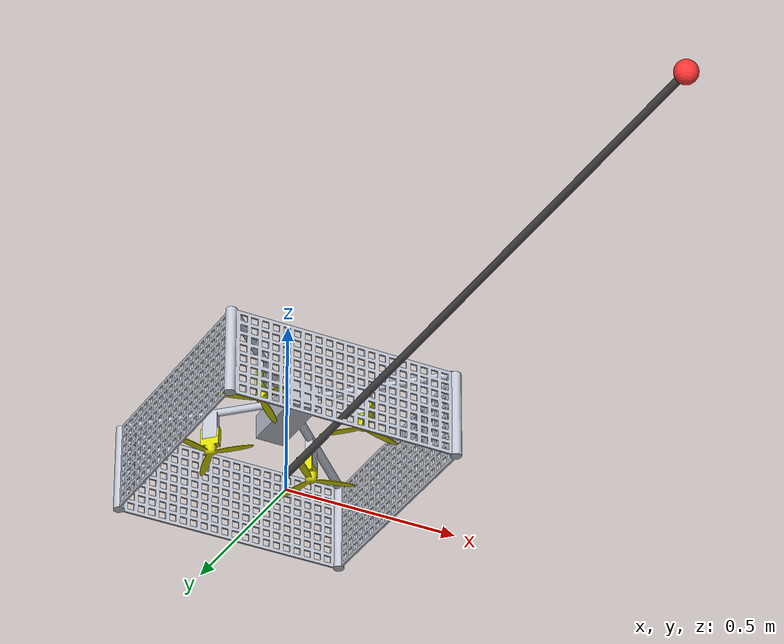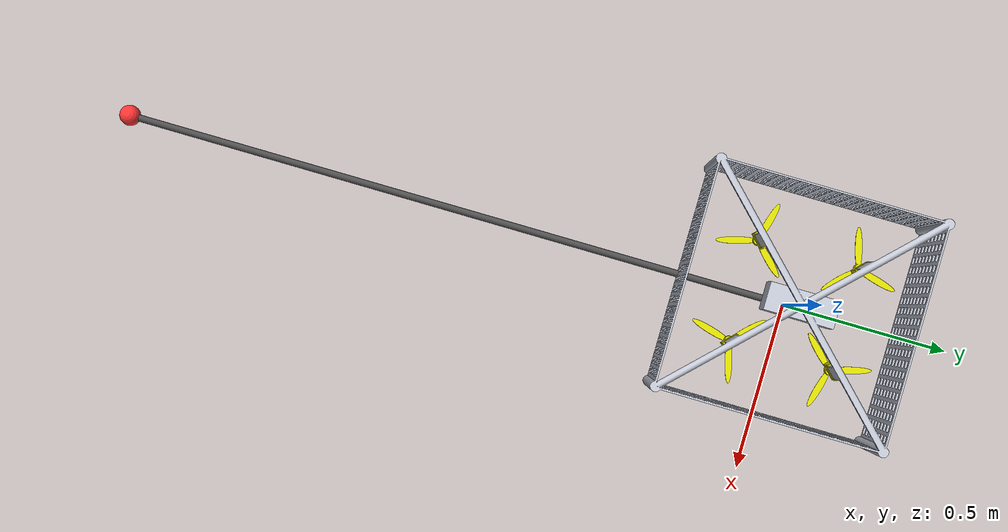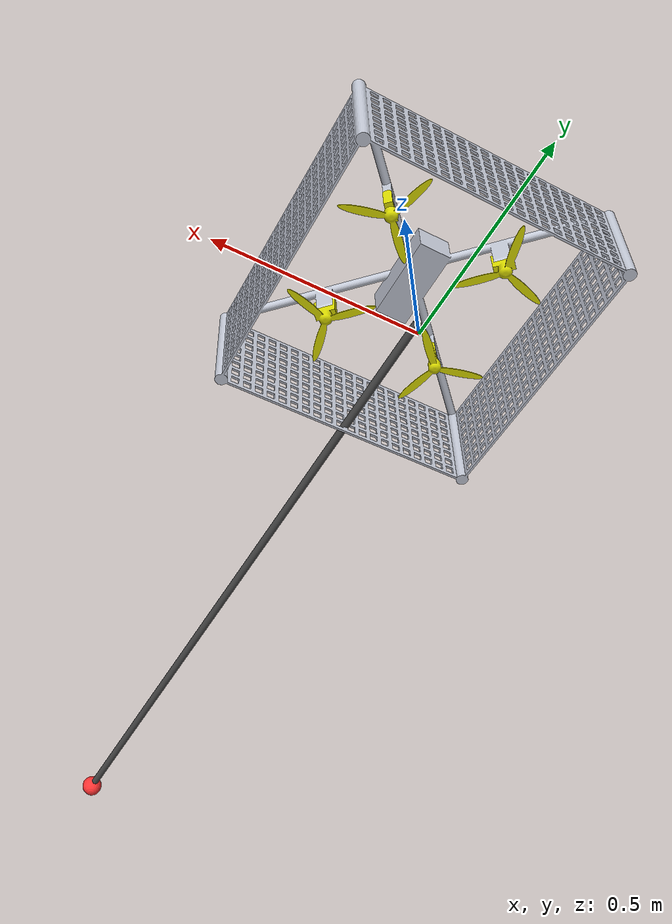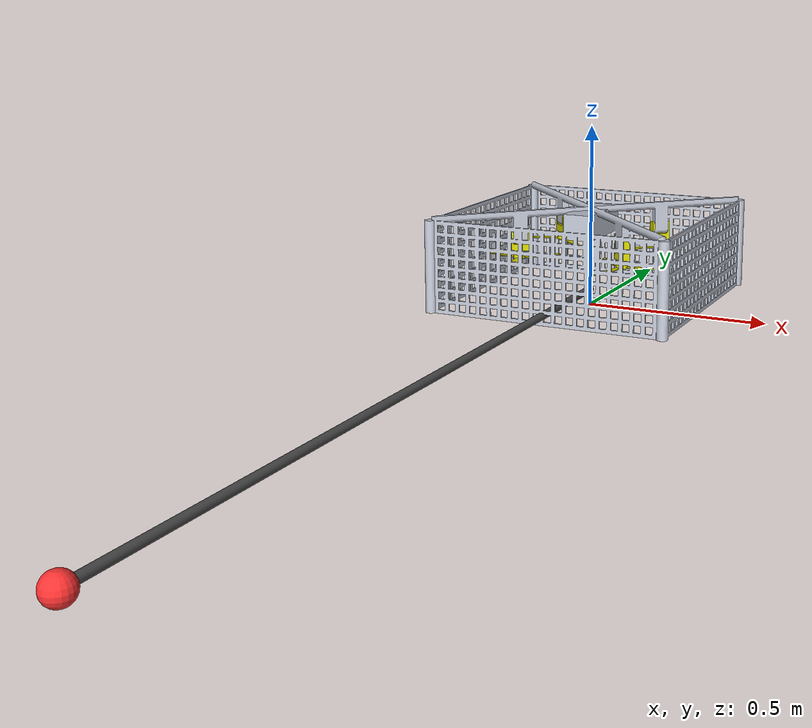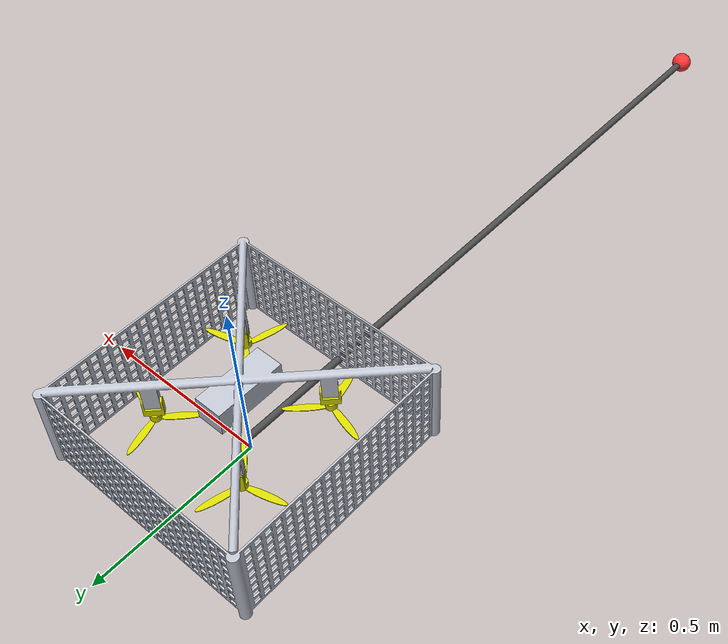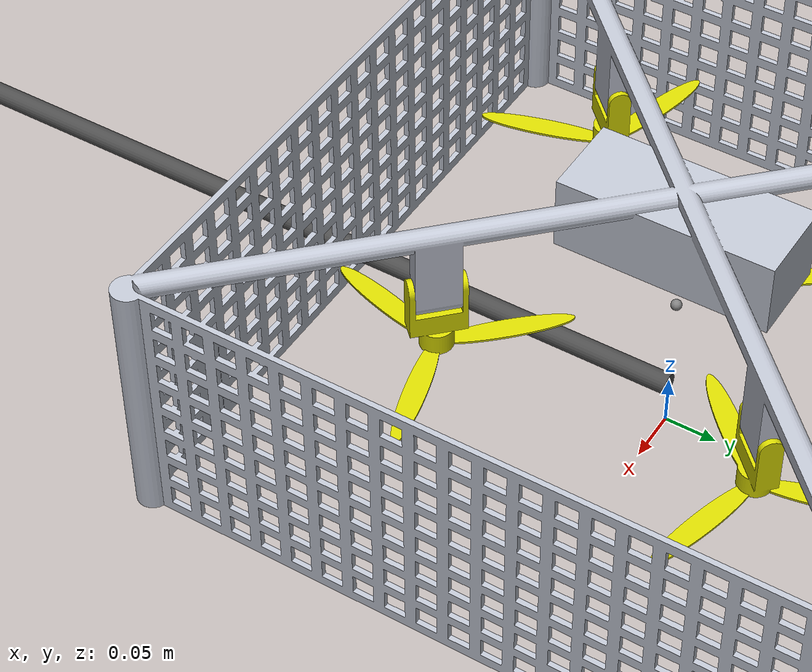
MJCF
<mujoco model="Palletrone">
  <asset>
    <mesh name="body_mesh"       file="BODY.stl"/>
    <mesh name="servo_prop_mesh" file="PROP.stl"/>
  </asset>

  <worldbody>
    <body name="base" pos="0 0 0.145">
      <freejoint name="root"/>
      <inertial pos="0 0 0" quat="1 0 0 0" mass="4.00" diaginertia="0.360091 0.360702 0.660702"/>
      <geom name="base_vis" type="mesh" mesh="body_mesh" rgba="0.75 0.77 0.82 1" contype="1" conaffinity="1"/>

      <site name="imu" pos="0 0 0" quat="1 0 0 0"/>

      <body name="servo1" pos="0.148492 0.148492 0.145" quat="0.9238795 0 0 0.3826834">
        <joint name="j_servo1" type="hinge" axis="1 0 0" pos="0 0 -0.075" range="-1.5 1.5" damping="10.0"/>
        <body name="prop1_body" pos="0 0 -0.075">
          <geom name="servo1_vis" type="mesh" mesh="servo_prop_mesh" mass="0.2"
                quat="0.7071068 0 0 0.7071068"
                rgba="0.85 0.85 0.0 1" contype="0" conaffinity="0"/>
          <site name="prop1_site" pos="0 0 0" size="0.004" type="sphere"/>
        </body>
      </body>

      <body name="servo2" pos="-0.148492 0.148492 0.145" quat="0.3826834 0 0 0.9238795">
        <joint name="j_servo2" type="hinge" axis="1 0 0" pos="0 0 -0.075" range="-1.5 1.5" damping="10.0"/>
        <body name="prop2_body" pos="0 0 -0.075">
          <geom name="servo2_vis" type="mesh" mesh="servo_prop_mesh" mass="0.2"
                quat="0.7071068 0 0 0.7071068"
                rgba="0.85 0.85 0.0 1" contype="0" conaffinity="0"/>
          <site name="prop2_site" pos="0 0 0" size="0.004" type="sphere"/>
        </body>
      </body>

      <body name="servo3" pos="-0.148492 -0.148492 0.145" quat="0.3826834 0 0 -0.9238795">
        <joint name="j_servo3" type="hinge" axis="1 0 0" pos="0 0 -0.075" range="-1.5 1.5" damping="10.0"/>
        <body name="prop3_body" pos="0 0 -0.075">
          <geom name="servo3_vis" type="mesh" mesh="servo_prop_mesh" mass="0.2"
                quat="0.7071068 0 0 0.7071068"
                rgba="0.85 0.85 0.0 1" contype="0" conaffinity="0"/>
          <site name="prop3_site" pos="0 0 0" size="0.004" type="sphere"/>
        </body>
      </body>

      <body name="servo4" pos="0.148492 -0.148492 0.145" quat="0.9238795 0 0 -0.3826834">
        <joint name="j_servo4" type="hinge" axis="1 0 0" pos="0 0 -0.075" range="-1.5 1.5" damping="10.0"/>
        <body name="prop4_body" pos="0 0 -0.075">
          <geom name="servo4_vis" type="mesh" mesh="servo_prop_mesh" mass="0.2"
                quat="0.7071068 0 0 0.7071068"
                rgba="0.85 0.85 0.0 1" contype="0" conaffinity="0"/>
          <site name="prop4_site" pos="0 0 0" size="0.004" type="sphere"/>
        </body>
      </body>

      <body name="rod" pos="0 0 -0.1">
        <geom name="rod_geom" type="cylinder" size="0.01 1.0"
              pos="0 -1.0 0" quat="0.7071068 0.7071068 0 0"
              mass="0.001" rgba="0.3 0.3 0.3 1" contype="0" conaffinity="0"/>
        <geom name="rod_tip" type="sphere" size="0.03"
              pos="0 -2.0 0"
              mass="0.001" rgba="1.0 0.2 0.2 1" contype="0" conaffinity="0"/>
        <site name="rod_tip_site" pos="0 -2.0 0" size="0.001" type="sphere"/>
      </body>
    </body>
  </worldbody>

  <actuator>
    <general name="BLDC1" site="prop1_site" gear="0 0 1 0 0  0.02"  ctrlrange="0 30"/>
    <general name="BLDC2" site="prop2_site" gear="0 0 1 0 0 -0.02"  ctrlrange="0 30"/>
    <general name="BLDC3" site="prop3_site" gear="0 0 1 0 0  0.02"  ctrlrange="0 30"/>
    <general name="BLDC4" site="prop4_site" gear="0 0 1 0 0 -0.02"  ctrlrange="0 30"/>

    <position name="servo1_pos" joint="j_servo1" kp="100" kv="0.1" ctrlrange="-1.5 1.5"/>
    <position name="servo2_pos" joint="j_servo2" kp="100" kv="0.1" ctrlrange="-1.5 1.5"/>
    <position name="servo3_pos" joint="j_servo3" kp="100" kv="0.1" ctrlrange="-1.5 1.5"/>
    <position name="servo4_pos" joint="j_servo4" kp="100" kv="0.1" ctrlrange="-1.5 1.5"/>
  </actuator>

  <sensor>
    <framequat   name="body_quat"   objtype="site" objname="imu"/>
    <gyro        name="body_gyro"   site="imu"/>
    <framepos    name="base_pos"    objtype="body" objname="base"/>
    <framelinvel name="base_linvel" objtype="body" objname="base"/>

    <jointpos name="servo1_angle" joint="j_servo1"/>
    <jointpos name="servo2_angle" joint="j_servo2"/>
    <jointpos name="servo3_angle" joint="j_servo3"/>
    <jointpos name="servo4_angle" joint="j_servo4"/>

    <framepos name="rod_tip_pos" objtype="site" objname="rod_tip_site"/>
  </sensor>
</mujoco>
